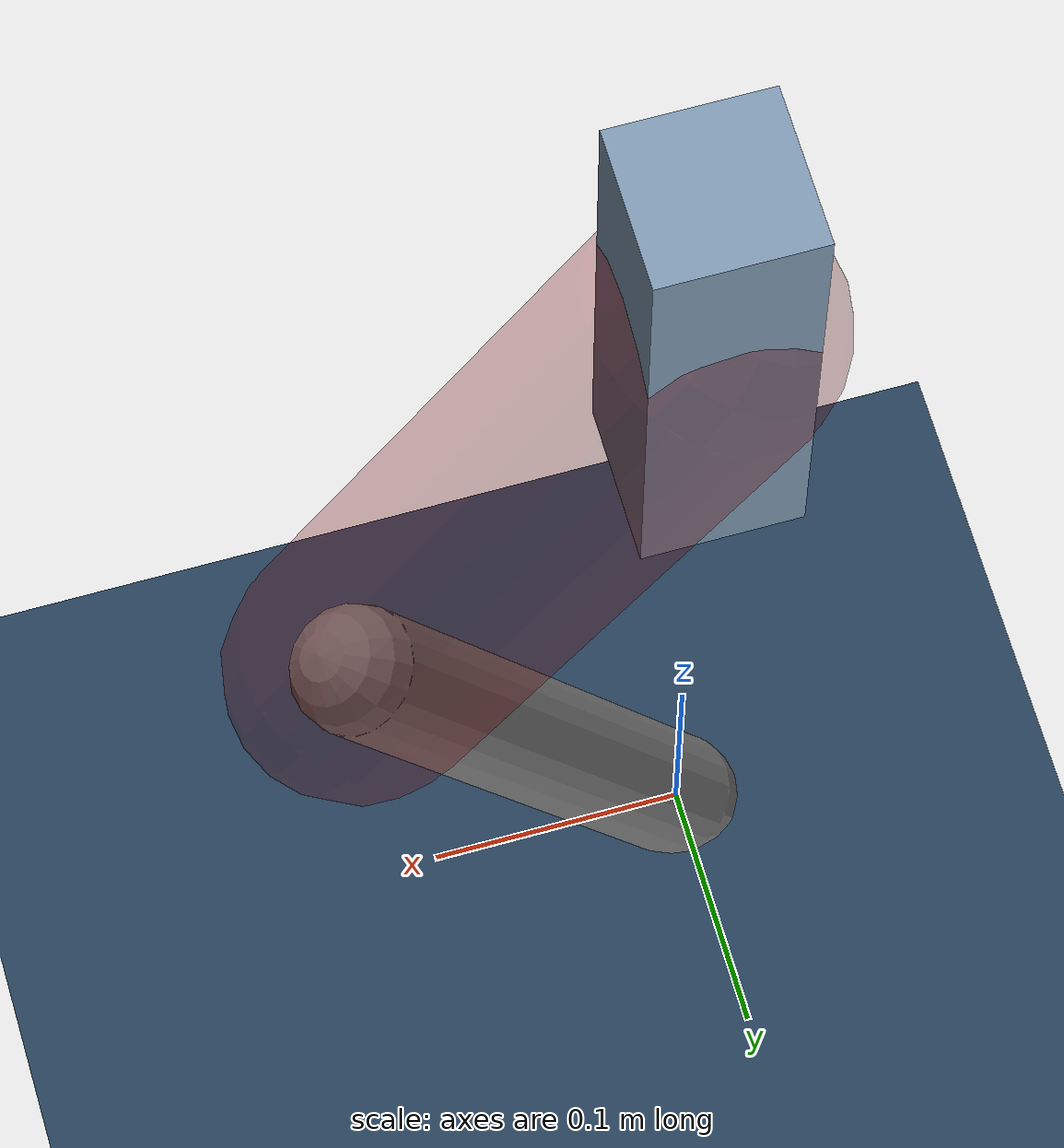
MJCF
<mujoco model="Hopper2D">
	<compiler inertiafromgeom="true" angle="radian" />
	<option timestep="0.001" integrator="implicit" cone="elliptic" solver="Newton" tolerance="1e-10" />

	<default>
		<geom contype="1" conaffinity="1" condim="3" friction="2 0.005 0.0001" solref="0.005 1" />
		<joint limited="true" damping="0.1" />
	</default>

	<asset>
		<texture name="skybox" type="skybox" builtin="gradient" rgb1=".4 .6 .8" rgb2="0 0 0" width="800" height="800" />
		<texture name="grid" type="2d" builtin="checker" rgb1=".1 .2 .3" rgb2=".2 .3 .4" width="300" height="300" mark="edge" markrgb=".2 .3 .4" />
		<material name="ground" texture="grid" texrepeat="1 1" texuniform="true" reflectance="0.1" />
		<material name="leg" rgba="0.5 0.6 0.7 1" />
	</asset>

	<worldbody>

		<geom name="floor" type="plane" size="5 5 0.25" material="ground" />

		<light directional="false" diffuse="0.8 0.8 0.8" specular="0.3 0.3 0.3" pos="0 0 2" dir="0 0 -1" />
		<light mode="targetbodycom" target="base" directional="false" diffuse="0.8 0.8 0.8" specular="0.3 0.3 0.3" pos="0 0 2" dir="0 0 -1" />

		<camera name="fixed" pos="0 -2 1" xyaxes="1 0 0 0 0 1" />
		<camera name="tracking" mode="trackcom" pos="0 -3 1" />

		<body name="root" pos="0 0 0.4035199071428597">
			<joint name="slide_x" type="slide" axis="1 0 0" range="-100 100" />
			<joint name="slide_z" type="slide" axis="0 0 1" range="0 10" />

			<body name="base" pos="0 0 0">
				<geom name="torso" type="box" size="0.03 0.03 0.1" mass="2.553" material="leg" />

				<body name="link1" pos="0 0 0" euler="0 1.0043395974512201 0">
					<joint type="hinge" axis="0 -1 0" pos="0 0 0" name="hinge1" limited="true" range="-3.14 3.14" stiffness="0" damping="0.1" />
					<geom name="thigh" type="capsule" fromto="0 0 0 0.23781320177972975 0 0" size="0.05" rgba="0.5 0 0 0.3" mass="0.8250143246272974" />

					<body name="link2" pos="0.23781320177972975 0 0" euler="0 1.1280259869393972 0">
						<joint type="hinge" axis="0 -1 0" pos="0 0 0" name="hinge2" limited="true" range="-3.14 3.14" stiffness="0" damping="0.1" />
						<geom name="shank" type="capsule" fromto="0 0 0 0.23965781158799554 0 0" size="0.025" mass="0.433992030429196" />

					</body>
				</body>
			</body>
		</body>
	</worldbody>

	<actuator>
		<motor name="torque1" joint="hinge1" ctrlrange="-23.66831376850895 23.66831376850895" ctrllimited="true" gear="1" />
		<motor name="torque2" joint="hinge2" ctrlrange="-138.61869620931924 138.61869620931924" ctrllimited="true" gear="1" />
	</actuator>
</mujoco>
